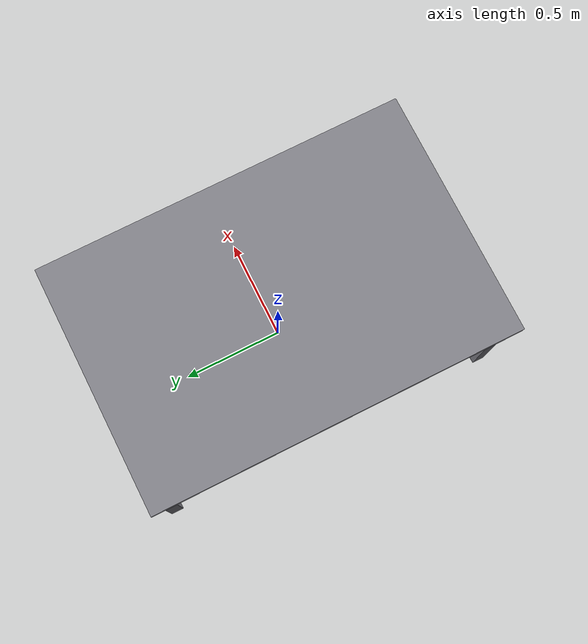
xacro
<?xml version="1.0"?>
<robot xmlns:xacro="http://www.ros.org/wiki/xacro" name="fr_table_cell">

  <link name="world"/>

  <link name="table_top">
    <visual>
      <origin xyz="0 0 0"/>
      <geometry>
        <box size="1.2 1.8 0.04"/>
      </geometry>
      <material name="table_grey">
        <color rgba="0.55 0.55 0.58 1.0"/>
      </material>
    </visual>
    <collision>
      <origin xyz="0 0 0"/>
      <geometry>
        <box size="1.2 1.8 0.04"/>
      </geometry>
    </collision>
  </link>
  <joint name="world_to_table_top" type="fixed">
    <origin xyz="0 0 0.73" rpy="0 0 0"/>
    <parent link="world"/>
    <child link="table_top"/>
  </joint>

  <xacro:macro name="table_leg" params="name x y">
    <link name="table_leg_${name}">
      <visual>
        <origin xyz="0 0 0"/>
        <geometry>
          <box size="0.06 0.06 0.71"/>
        </geometry>
        <material name="table_leg_grey">
          <color rgba="0.42 0.42 0.45 1.0"/>
        </material>
      </visual>
      <collision>
        <origin xyz="0 0 0"/>
        <geometry>
          <box size="0.06 0.06 0.71"/>
        </geometry>
      </collision>
    </link>
    <joint name="table_leg_${name}_joint" type="fixed">
      <origin xyz="${x} ${y} -0.375" rpy="0 0 0"/>
      <parent link="table_top"/>
      <child link="table_leg_${name}"/>
    </joint>
  </xacro:macro>

  <xacro:table_leg name="fl" x="-0.54" y="-0.83"/>
  <xacro:table_leg name="fr" x="0.54" y="-0.83"/>
  <xacro:table_leg name="rl" x="-0.54" y="0.83"/>
  <xacro:table_leg name="rr" x="0.54" y="0.83"/>

</robot>
